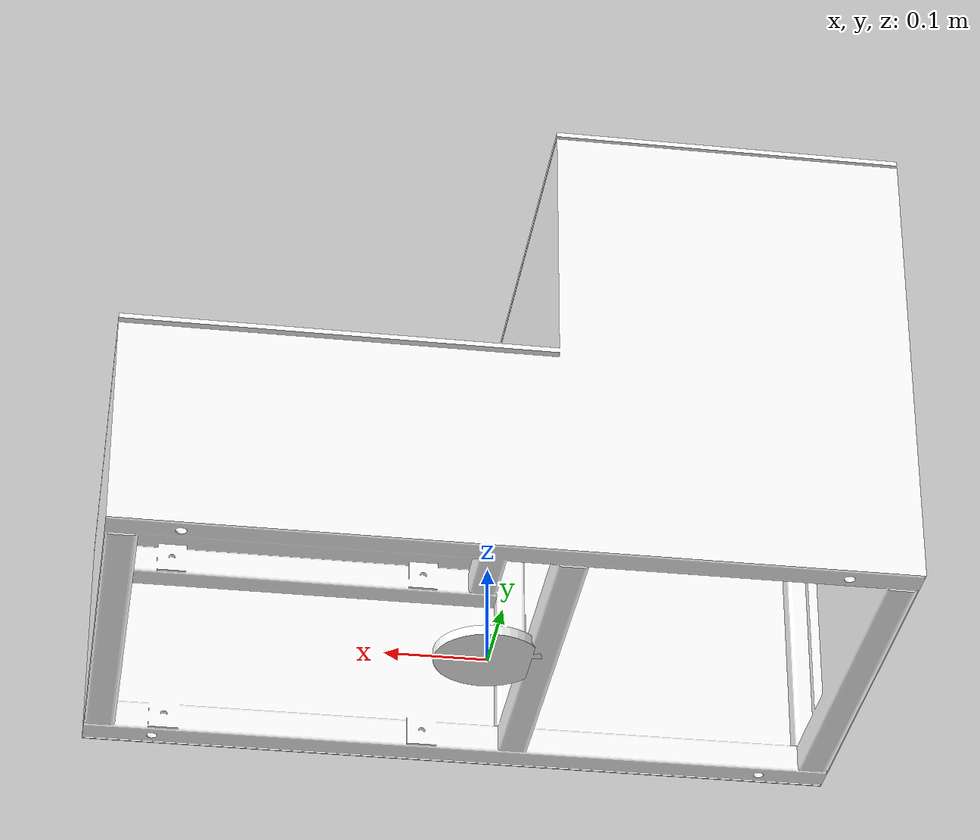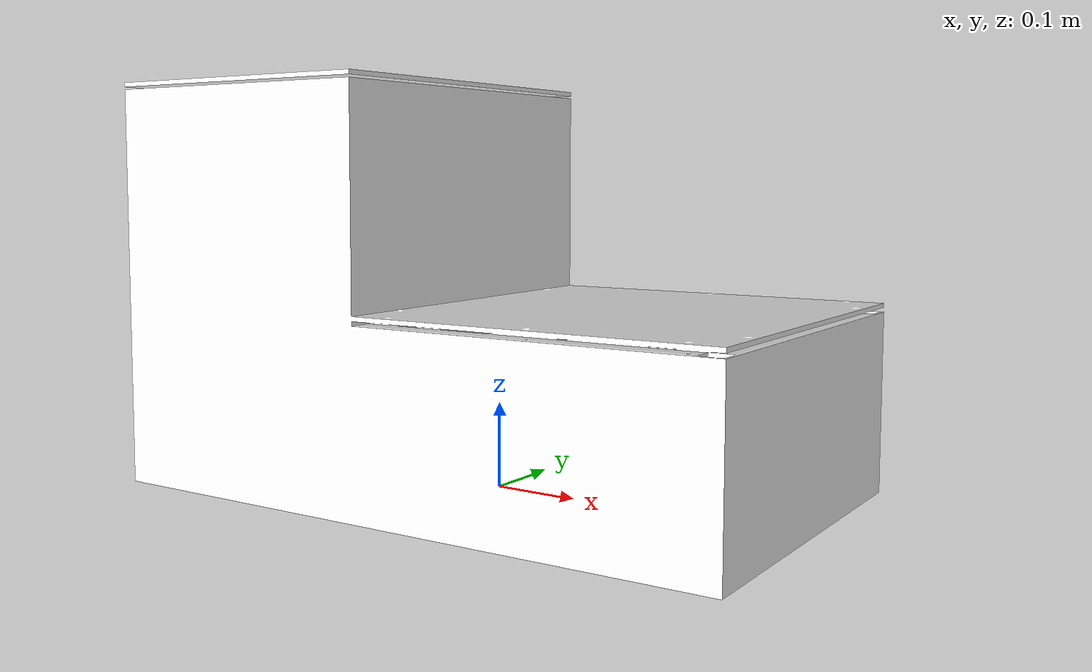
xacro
<?xml version="1.0" encoding="utf-8"?>
<robot
  name="mir_box">
  <link
    name="mir_box_base_link">
    <inertial>
      <origin
        xyz="6.9389E-18 1.3878E-17 0.005"
        rpy="0 0 0" />
      <mass
        value="0.087484" />
      <inertia
        ixx="6.1633E-05"
        ixy="-6.088E-22"
        ixz="4.8208E-21"
        iyy="6.1633E-05"
        iyz="2.0217E-19"
        izz="0.00012181" />
    </inertial>
    <visual>
      <origin
        xyz="0 0 0"
        rpy="0 0 0" />
      <geometry>
        <mesh
          filename="package://mir_box/meshes/mir_box_base_link.STL" />
      </geometry>
      <material
        name="">
        <color
          rgba="1 1 1 1" />
      </material>
    </visual>
    <collision>
      <origin
        xyz="0 0 0"
        rpy="0 0 0" />
      <geometry>
        <mesh
          filename="package://mir_box/meshes/mir_box_base_link.STL" />
      </geometry>
    </collision>
  </link>
  <link
    name="box_ur_link">
    <inertial>
      <origin
        xyz="0.11071 0.00046711 -0.22445"
        rpy="0 0 0" />
      <mass
        value="4.4758" />
      <inertia
        ixx="0.088836"
        ixy="-2.1555E-07"
        ixz="-0.00164"
        iyy="0.071317"
        iyz="-2.7561E-09"
        izz="0.11856" />
    </inertial>
    <visual>
      <origin
        xyz="0 0 0"
        rpy="0 0 0" />
      <geometry>
        <mesh
          filename="package://mir_box/meshes/box_ur_link.STL" />
      </geometry>
      <material
        name="">
        <color
          rgba="1 1 1 1" />
      </material>
    </visual>
    <collision>
      <origin
        xyz="0 0 0"
        rpy="0 0 0" />
      <geometry>
        <mesh
          filename="package://mir_box/meshes/box_ur_link.STL" />
      </geometry>
    </collision>
  </link>
  <joint
    name="box_ur_joint"
    type="fixed">
    <origin
      xyz="-0.158 0 0.473"
      rpy="0 0 0" />
    <parent
      link="mir_box_base_link" />
    <child
      link="box_ur_link" />
    <axis
      xyz="0 0 -1" />
  </joint>
</robot>
